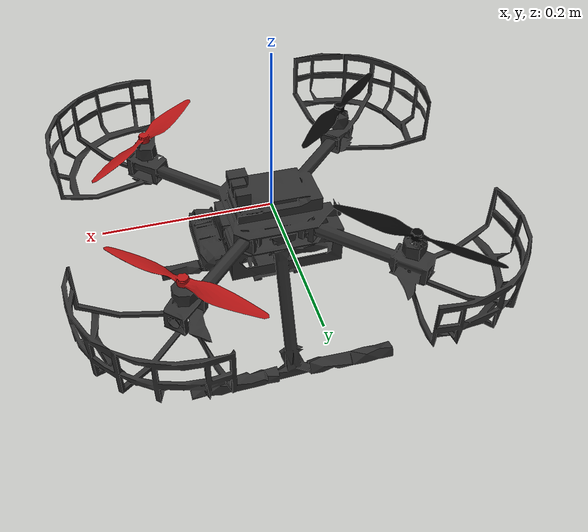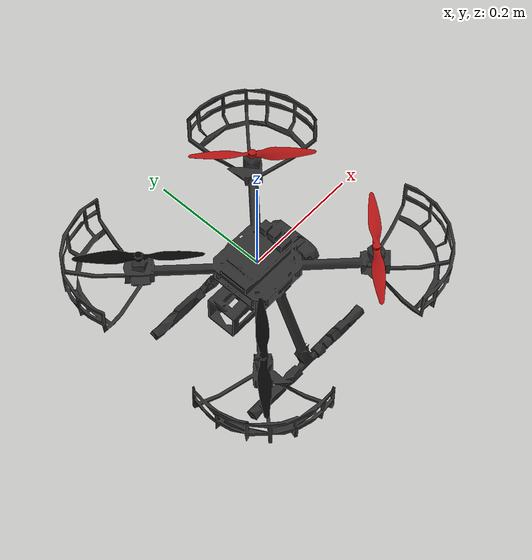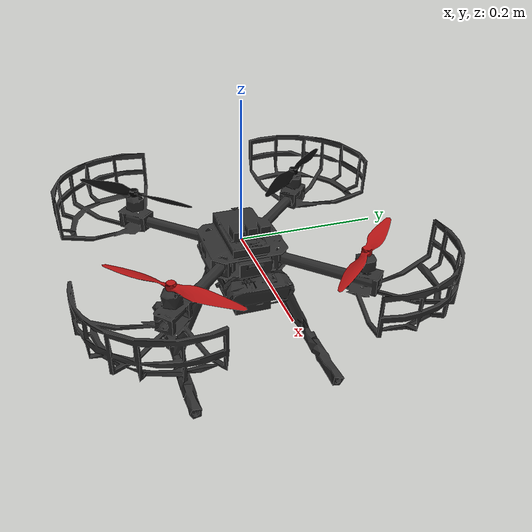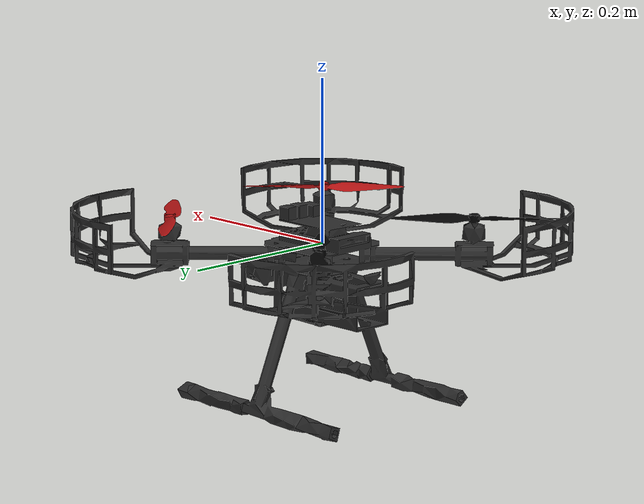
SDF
<?xml version="1.0" ?>
<sdf version="1.10">
  <model name="silver">
    <link name="base_link">
      <inertial>
        <pose>0.003475127956175234 -4.592282392876946e-05 -0.03000743571259557 0.0 -0.0 0.0</pose>
        <mass>2.218387890479499</mass>
        <inertia>
          <ixx>0.02525515075706975</ixx>
          <ixy>3.410915038082274e-06</ixy>
          <ixz>-0.0001134885980087065</ixz>
          <iyy>0.02660887307713708</iyy>
          <iyz>3.82914374606966e-06</iyz>
          <izz>0.04177236904136958</izz>
        </inertia>
      </inertial>
      <visual name="base_link_visual">
        <geometry>
          <mesh>
            <scale>0.001 0.001 0.001</scale>
            <uri>meshes/base_link__vis.stl</uri>
          </mesh>
        </geometry>
        <material> <!-- DarkGrey -->
          <ambient>0.175 0.175 0.175 1.0</ambient>
          <diffuse>0.175 0.175 0.175 1.0</diffuse>
          <specular>0.175 0.175 0.175 1.0</specular>
        </material>
      </visual>
      <collision name="base_link_collision">
        <!-- Box primitivo (era mesh trimesh -> causava ODE trimesh-trimesh overflow).
             Dimensoes/centro = bounding box do antigo base_link__col.stl. -->
        <pose>0.0008 0.0 -0.0761 0 0 0</pose>
        <geometry>
          <box>
            <size>0.4947 0.4948 0.2415</size>
          </box>
        </geometry>
      </collision>
      <sensor name="d435i_depth" type="depth_camera">
        <always_on>1</always_on>
        <update_rate>30</update_rate>
        <visualize>true</visualize>
        <pose>-0.01565 0.09485 -0.0383 -0.0 -0.0 1.570796</pose>
        <topic>d435i_depth</topic>
        <camera>
          <horizontal_fov>1.047198</horizontal_fov>
          <image>
            <width>640</width>
            <height>480</height>
            <format>L8</format>
          </image>
          <clip>
            <near>0.05</near>
            <far>8.0</far>
          </clip>
        </camera>
      </sensor>
      <sensor name="d435i_color" type="camera">
        <always_on>1</always_on>
        <update_rate>30</update_rate>
        <visualize>true</visualize>
        <pose>-0.03065 0.09485 -0.0383 -0.0 -0.0 1.570796</pose>
        <topic>d435i_color</topic>
        <camera>
          <horizontal_fov>1.396263</horizontal_fov>
          <image>
            <width>640</width>
            <height>480</height>
            <format>R8G8B8</format>
          </image>
          <clip>
            <near>0.1</near>
            <far>100.0</far>
          </clip>
        </camera>
      </sensor>
      <sensor name="d435i_infra1" type="camera">
        <always_on>1</always_on>
        <update_rate>30</update_rate>
        <visualize>true</visualize>
        <pose>0.03435 0.09485 -0.0383 -0.0 -0.0 1.570796</pose>
        <topic>d435i_infra1</topic>
        <camera>
          <horizontal_fov>1.396263</horizontal_fov>
          <image>
            <width>640</width>
            <height>480</height>
            <format>L8</format> <!-- D435i infra: escala de cinza -->

          </image>
          <clip>
            <near>0.1</near>
            <far>100.0</far>
          </clip>
        </camera>
      </sensor>
      <sensor name="d435i_imu" type="imu">
        <always_on>1</always_on>
        <update_rate>100</update_rate>
        <visualize>true</visualize>
        <pose>0.01355 0.08285 -0.0332 -0.0 -0.0 1.570796</pose>
        <topic>d435i_imu</topic>
        <imu />
      </sensor>
      <sensor name="d435i_infra2" type="camera">
        <always_on>1</always_on>
        <update_rate>30</update_rate>
        <visualize>true</visualize>
        <pose>-0.01565 0.09485 -0.0373 -0.0 -0.0 1.570796</pose>
        <topic>d435i_infra2</topic>
        <camera>
          <horizontal_fov>1.396263</horizontal_fov>
          <image>
            <width>640</width>
            <height>480</height>
            <format>L8</format> <!-- D435i infra: escala de cinza -->

          </image>
          <clip>
            <near>0.1</near>
            <far>100.0</far>
          </clip>
        </camera>
      </sensor>

      <!-- ===== Sensores de voo (portados da versao antiga 'silver') ===== -->
      <!-- sensor de pressao -->
      <sensor name="air_pressure_sensor" type="air_pressure">
        <always_on>1</always_on>
        <update_rate>50</update_rate>
        <air_pressure>
          <pressure>
            <noise type="gaussian">
              <mean>0</mean>
              <stddev>0.01</stddev>
            </noise>
          </pressure>
        </air_pressure>
      </sensor>

      <!-- imu do controlador de voo -->
      <sensor name="imu_sensor" type="imu">
        <always_on>1</always_on>
        <update_rate>250</update_rate>
        <imu>
          <angular_velocity>
            <x>
              <noise type="gaussian">
                <mean>0</mean>
                <stddev>0.00018665</stddev>
                <dynamic_bias_stddev>3.8785e-05</dynamic_bias_stddev>
                <dynamic_bias_correlation_time>1000</dynamic_bias_correlation_time>
              </noise>
            </x>
            <y>
              <noise type="gaussian">
                <mean>0</mean>
                <stddev>0.00018665</stddev>
                <dynamic_bias_stddev>3.8785e-05</dynamic_bias_stddev>
                <dynamic_bias_correlation_time>1000</dynamic_bias_correlation_time>
              </noise>
            </y>
            <z>
              <noise type="gaussian">
                <mean>0</mean>
                <stddev>0.00018665</stddev>
                <dynamic_bias_stddev>3.8785e-05</dynamic_bias_stddev>
                <dynamic_bias_correlation_time>1000</dynamic_bias_correlation_time>
              </noise>
            </z>
          </angular_velocity>
          <linear_acceleration>
            <x>
              <noise type="gaussian">
                <mean>0</mean>
                <stddev>0.00186</stddev>
                <dynamic_bias_stddev>0.006</dynamic_bias_stddev>
                <dynamic_bias_correlation_time>300</dynamic_bias_correlation_time>
              </noise>
            </x>
            <y>
              <noise type="gaussian">
                <mean>0</mean>
                <stddev>0.00186</stddev>
                <dynamic_bias_stddev>0.006</dynamic_bias_stddev>
                <dynamic_bias_correlation_time>300</dynamic_bias_correlation_time>
              </noise>
            </y>
            <z>
              <noise type="gaussian">
                <mean>0</mean>
                <stddev>0.00186</stddev>
                <dynamic_bias_stddev>0.006</dynamic_bias_stddev>
                <dynamic_bias_correlation_time>300</dynamic_bias_correlation_time>
              </noise>
            </z>
          </linear_acceleration>
        </imu>
      </sensor>

      <!-- sensor nav_sat (desativado na versao antiga) -->

      <!-- magnetometro: o nome deve coincidir com o declarado no GZBridge.cpp,
           senao a PX4 nao consegue fazer a ponte do topico do GZ para a PX4 -->
      <sensor name="magnetometer_sensor" type="magnetometer">
        <always_on>1</always_on>
        <update_rate>50</update_rate>
        <magnetometer>
          <x>
            <noise type="gaussian">
              <mean>0.000000080</mean>
              <bias_mean>0.000000400</bias_mean>
            </noise>
          </x>
          <y>
            <noise type="gaussian">
              <mean>0.000000080</mean>
              <bias_mean>0.000000400</bias_mean>
            </noise>
          </y>
          <z>
            <noise type="gaussian">
              <mean>0.000000080</mean>
              <bias_mean>0.000000400</bias_mean>
            </noise>
          </z>
        </magnetometer>
      </sensor>
    </link>
    <link name="rotor_0">
      <inertial>
        <pose>0.12938244905459884 -0.1285842073913007 0.03226998520115751 0.0 -0.0 0.0</pose>
        <mass>0.0066284678023075345</mass>
        <inertia>
          <ixx>6.299485395442131e-06</ixx>
          <ixy>-6.021010365436552e-06</ixy>
          <ixz>-1.708225714133478e-11</ixz>
          <iyy>5.988141719802422e-06</iyy>
          <iyz>-1.8015701028841228e-11</iyz>
          <izz>1.2232017849120986e-05</izz>
        </inertia>
      </inertial>
      <visual name="rotor_0_visual">
        <geometry>
          <mesh>
            <scale>0.001 0.001 0.001</scale>
            <uri>meshes/rotor_0_1__vis.stl</uri>
          </mesh>
        </geometry>
        <material> <!-- Vermelho (#B21613) -->
          <ambient>0.694 0.071 0.071 1.0</ambient>
          <diffuse>0.694 0.071 0.071 1.0</diffuse>
          <specular>0.5 0.5 0.5 1.0</specular>
        </material>
      </visual>
      <collision name="rotor_0_collision">
        <pose>0.1294 -0.1286 0.0316 0 0 0</pose>
        <geometry>
          <box>
            <size>0.1600 0.1563 0.0094</size>
          </box>
        </geometry>
      </collision>
    </link>
    <link name="rotor_1">
      <inertial>
        <pose>-0.12778260224468957 0.12858244898829643 0.03153547606517574 0.0 -0.0 0.0</pose>
        <mass>0.006628467802335466</mass>
        <inertia>
          <ixx>5.994010826522252e-06</ixx>
          <ixy>6.020992175538641e-06</ixy>
          <ixz>-1.1537283173095048e-11</ixz>
          <iyy>6.305354501671712e-06</iyy>
          <iyz>1.3971873828798158e-11</iyz>
          <izz>1.223201807563245e-05</izz>
        </inertia>
      </inertial>
      <visual name="rotor_1_visual">
        <geometry>
          <mesh>
            <scale>0.001 0.001 0.001</scale>
            <uri>meshes/rotor_1_1__vis.stl</uri>
          </mesh>
        </geometry>
        <material> <!-- Preto -->
          <ambient>0.01 0.01 0.01 1.0</ambient>
          <diffuse>0.01 0.01 0.01 1.0</diffuse>
          <specular>0.5 0.5 0.5 1.0</specular>
        </material>
      </visual>
      <collision name="rotor_1_collision">
        <pose>-0.1278 0.1286 0.0317 0 0 0</pose>
        <geometry>
          <box>
            <size>0.1563 0.1600 0.0091</size>
          </box>
        </geometry>
      </collision>
    </link>
    <link name="rotor_2">
      <inertial>
        <pose>0.12938420745769247 0.12858244898820748 0.03226998520115753 0.0 -0.0 0.0</pose>
        <mass>0.006628467802307532</mass>
        <inertia>
          <ixx>5.988141833325328e-06</ixx>
          <ixy>6.02101036543582e-06</ixy>
          <ixz>1.802990210879622e-11</ixz>
          <iyy>6.29948528191772e-06</iyy>
          <iyz>-1.7096458231454165e-11</iyz>
          <izz>1.2232017849119468e-05</izz>
        </inertia>
      </inertial>
      <visual name="rotor_2_visual">
        <geometry>
          <mesh>
            <scale>0.001 0.001 0.001</scale>
            <uri>meshes/rotor_2_1__vis.stl</uri>
          </mesh>
        </geometry>
        <material> <!-- Vermelho (#B21613) -->
          <ambient>0.694 0.071 0.071 1.0</ambient>
          <diffuse>0.694 0.071 0.071 1.0</diffuse>
          <specular>0.5 0.5 0.5 1.0</specular>
        </material>
      </visual>
      <collision name="rotor_2_collision">
        <pose>0.1294 0.1286 0.0316 0 0 0</pose>
        <geometry>
          <box>
            <size>0.1564 0.1600 0.0098</size>
          </box>
        </geometry>
      </collision>
    </link>
    <link name="rotor_3">
      <inertial>
        <pose>-0.12778244892190582 -0.12858260231108065 0.03153547606517568 0.0 -0.0 0.0</pose>
        <mass>0.0066284678023354636</mass>
        <inertia>
          <ixx>6.305354388852724e-06</ixx>
          <ixy>-6.02099217553879e-06</ixy>
          <ixz>-1.395799599694463e-11</ixz>
          <iyy>5.994010939341051e-06</iyy>
          <iyz>-1.1551161038829893e-11</iyz>
          <izz>1.2232018075632504e-05</izz>
        </inertia>
      </inertial>
      <visual name="rotor_3_visual">
        <geometry>
          <mesh>
            <scale>0.001 0.001 0.001</scale>
            <uri>meshes/rotor_3_1__vis.stl</uri>
          </mesh>
        </geometry>
        <material> <!-- Preto -->
          <ambient>0.01 0.01 0.01 1.0</ambient>
          <diffuse>0.01 0.01 0.01 1.0</diffuse>
          <specular>0.5 0.5 0.5 1.0</specular>
        </material>
      </visual>
      <collision name="rotor_3_collision">
        <pose>-0.1277 -0.1286 0.0318 0 0 0</pose>
        <geometry>
          <box>
            <size>0.1603 0.1563 0.0104</size>
          </box>
        </geometry>
      </collision>
    </link>
    <joint name="rotor_1_joint" type="continuous">
      <pose relative_to="__model__">-0.12778339418017343 0.12858339418017328 0.02729999999999981 0.0 -0.0 0.0</pose>
      <parent>base_link</parent>
      <child>rotor_1</child>
      <axis>
        <xyz expressed_in="__model__">2.4694738632952357e-16 -2.1138969806591227e-16 -1.0</xyz>
      </axis>
    </joint>
    <joint name="rotor_3_joint" type="continuous">
      <pose relative_to="__model__">-0.12778339418017354 -0.12858339418017314 0.027299999999999755 0.0 -0.0 0.0</pose>
      <parent>base_link</parent>
      <child>rotor_3</child>
      <axis>
        <xyz expressed_in="__model__">1.251311863034323e-15 -4.4630592655269164e-17 -1.0</xyz>
      </axis>
    </joint>
    <joint name="rotor_2_joint" type="continuous">
      <pose relative_to="__model__">0.12938339418017317 0.1285833941801732 0.02729999999999986 0.0 -0.0 0.0</pose>
      <parent>base_link</parent>
      <child>rotor_2</child>
      <axis>
        <xyz expressed_in="__model__">6.979746296935188e-17 1.522471419556796e-16 -1.0</xyz>
      </axis>
    </joint>
    <joint name="rotor_0_joint" type="continuous">
      <pose relative_to="__model__">0.12938339418017283 -0.12858339418017317 0.027299999999999817 0.0 -0.0 0.0</pose>
      <parent>base_link</parent>
      <child>rotor_0</child>
      <axis>
        <xyz expressed_in="__model__">4.282388940161696e-17 1.1764216141113191e-17 -1.0</xyz>
      </axis>
    </joint>

    <!-- ===== Plugins de motor (portados da versao antiga 'silver') ===== -->
    <plugin filename="gz-sim-multicopter-motor-model-system" name="gz::sim::systems::MulticopterMotorModel">
      <jointName>rotor_0_joint</jointName>
      <linkName>rotor_0</linkName>
      <turningDirection>ccw</turningDirection>
      <timeConstantUp>0.0125</timeConstantUp>
      <timeConstantDown>0.025</timeConstantDown>
      <maxRotVelocity>1000.0</maxRotVelocity>
      <motorConstant>8.54858e-06</motorConstant>
      <momentConstant>0.016</momentConstant>
      <commandSubTopic>command/motor_speed</commandSubTopic>
      <motorNumber>0</motorNumber>
      <rotorDragCoefficient>8.06428e-05</rotorDragCoefficient>
      <rollingMomentCoefficient>1e-06</rollingMomentCoefficient>
      <rotorVelocitySlowdownSim>10</rotorVelocitySlowdownSim>
      <motorType>velocity</motorType>
    </plugin>
    <plugin filename="gz-sim-multicopter-motor-model-system" name="gz::sim::systems::MulticopterMotorModel">
      <jointName>rotor_1_joint</jointName>
      <linkName>rotor_1</linkName>
      <turningDirection>ccw</turningDirection>
      <timeConstantUp>0.0125</timeConstantUp>
      <timeConstantDown>0.025</timeConstantDown>
      <maxRotVelocity>1000.0</maxRotVelocity>
      <motorConstant>8.54858e-06</motorConstant>
      <momentConstant>0.016</momentConstant>
      <commandSubTopic>command/motor_speed</commandSubTopic>
      <motorNumber>1</motorNumber>
      <rotorDragCoefficient>8.06428e-05</rotorDragCoefficient>
      <rollingMomentCoefficient>1e-06</rollingMomentCoefficient>
      <rotorVelocitySlowdownSim>10</rotorVelocitySlowdownSim>
      <motorType>velocity</motorType>
    </plugin>
    <plugin filename="gz-sim-multicopter-motor-model-system" name="gz::sim::systems::MulticopterMotorModel">
      <jointName>rotor_2_joint</jointName>
      <linkName>rotor_2</linkName>
      <turningDirection>cw</turningDirection>
      <timeConstantUp>0.0125</timeConstantUp>
      <timeConstantDown>0.025</timeConstantDown>
      <maxRotVelocity>1000.0</maxRotVelocity>
      <motorConstant>8.54858e-06</motorConstant>
      <momentConstant>0.016</momentConstant>
      <commandSubTopic>command/motor_speed</commandSubTopic>
      <motorNumber>2</motorNumber>
      <rotorDragCoefficient>8.06428e-05</rotorDragCoefficient>
      <rollingMomentCoefficient>1e-06</rollingMomentCoefficient>
      <rotorVelocitySlowdownSim>10</rotorVelocitySlowdownSim>
      <motorType>velocity</motorType>
    </plugin>
    <plugin filename="gz-sim-multicopter-motor-model-system" name="gz::sim::systems::MulticopterMotorModel">
      <jointName>rotor_3_joint</jointName>
      <linkName>rotor_3</linkName>
      <turningDirection>cw</turningDirection>
      <timeConstantUp>0.0125</timeConstantUp>
      <timeConstantDown>0.025</timeConstantDown>
      <maxRotVelocity>1000.0</maxRotVelocity>
      <motorConstant>8.54858e-06</motorConstant>
      <momentConstant>0.016</momentConstant>
      <commandSubTopic>command/motor_speed</commandSubTopic>
      <motorNumber>3</motorNumber>
      <rotorDragCoefficient>8.06428e-05</rotorDragCoefficient>
      <rollingMomentCoefficient>1e-06</rollingMomentCoefficient>
      <rotorVelocitySlowdownSim>10</rotorVelocitySlowdownSim>
      <motorType>velocity</motorType>
    </plugin>
  </model>
</sdf>
